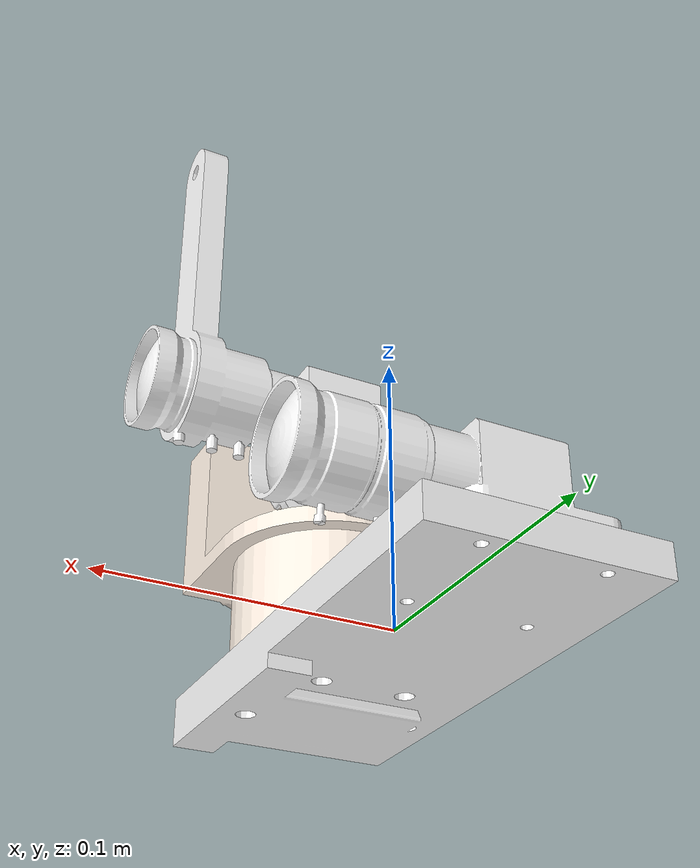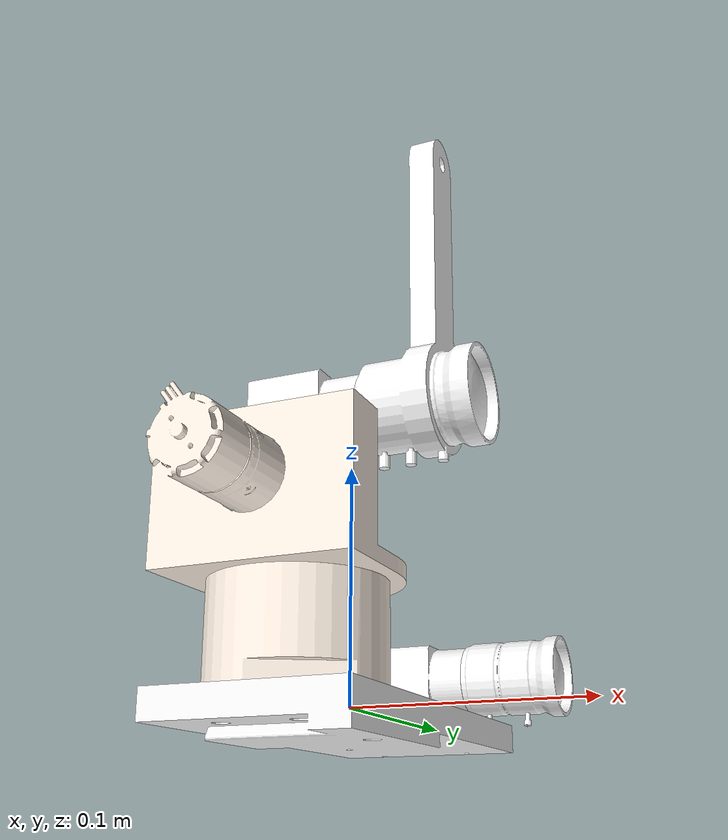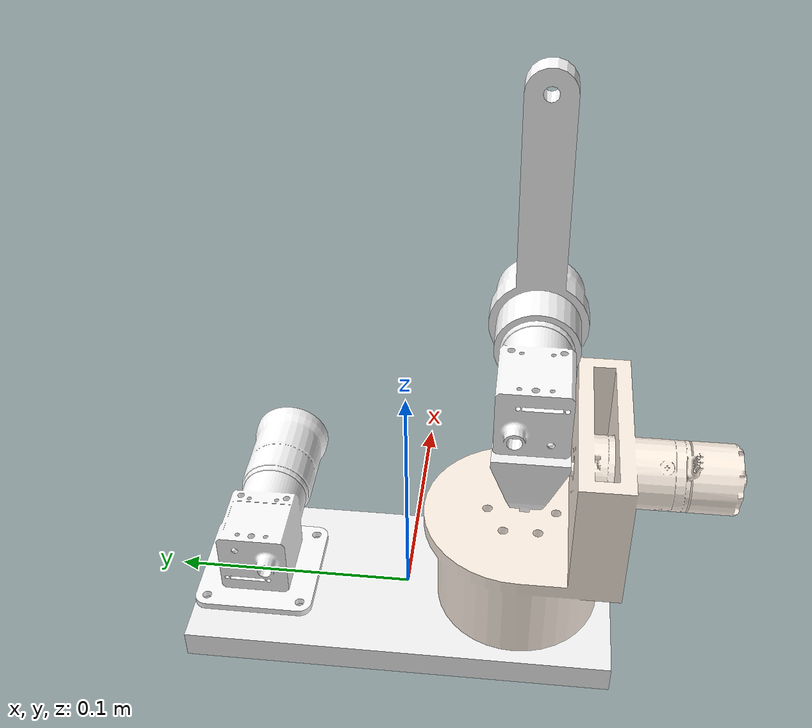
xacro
<?xml version="1.0"?>
<robot name="radar_gimbal" xmlns:xacro="http://www.ros.org/wiki/xacro">

  <!-- 相对 base_footprint 的装配平移。此前 z=3 会使 SDF 把底座+固定相机 lump 到 base_footprint 后质心约在 z≈3，选中时出现「细长盒子插到地下」的包围盒假象，并恶化数值问题。需要抬高整机请改 sim.launch.py 的 spawn -z。 -->
  <xacro:property name="base_footprint_xyz" value="0 0 0"/>
  <xacro:property name="base_footprint_rpy" value="0 0 0"/>

  <!-- 电机参数（按你提供的驱动实测页面）： -->
  <!-- CAN ID 0x01 = pitch（减速比 25，极对数 7） -->
  <!-- CAN ID 0x02 = 云台电机/roll（减速比 1，极对数 14） -->
  <!-- 控制阈值按实机当前配置：PMAX=pi, VMAX=30rad/s, TMAX=10Nm -->
  <xacro:property name="pitch_cmd_vmax_rad_s" value="30.0"/>
  <xacro:property name="pitch_cmd_tmax_nm" value="10.0"/>
  <xacro:property name="roll_cmd_vmax_rad_s" value="30.0"/>
  <xacro:property name="roll_cmd_tmax_nm" value="10.0"/>
  <!-- 粘滞系数按驱动读值回填 -->
  <xacro:property name="pitch_damping_measured" value="5.33834e-06"/>
  <xacro:property name="roll_damping_measured" value="0.00326047"/>

  <!-- 相机参数（按当前实物配置） -->
  <!-- 长焦：MV-CS016-10UC + 50mm F2.8（1/1.8" 靶面，水平尺寸约 7.2mm） -->
  <xacro:property name="tele_hfov_rad" value="${2.0 * atan(7.2 / (2.0 * 50.0))}"/>
  <!-- 短焦：MV-CS060-10UC-PRO + 5-12mm 变焦镜头，仿真默认用中段 8mm -->
  <xacro:property name="wide_hfov_rad" value="${2.0 * atan(7.2 / (2.0 * 8.0))}"/>

  <xacro:macro name="radar_solidworks_model">
    <link name="base_footprint">
      <inertial>
        <origin xyz="0 0 0" rpy="0 0 0"/>
        <mass value="1e-6"/>
        <inertia ixx="1e-9" ixy="0" ixz="0" iyy="1e-9" iyz="0" izz="1e-9"/>
      </inertial>
    </link>

    <joint name="base_footprint_joint" type="fixed">
      <origin xyz="${base_footprint_xyz}" rpy="${base_footprint_rpy}"/>
      <parent link="base_footprint"/>
      <child link="base_link"/>
    </joint>

    <link name="base_link">
      <inertial>
        <origin xyz="0.00106427671530626 -0.00322922392982693 -0.00671468562919772" rpy="0 0 0"/>
        <mass value="0.229931745877165"/>
        <inertia ixx="0.000590270936390006" ixy="1.07371769131118E-05" ixz="1.88719478321106E-06"
                 iyy="0.000126898863823102" iyz="-6.79511189117362E-06" izz="0.000709505066157741"/>
      </inertial>
      <visual>
        <origin xyz="0 0 0" rpy="0 0 0"/>
        <geometry>
          <mesh filename="package://radar_gimbal_gazebo/meshes/base_link.STL"/>
        </geometry>
        <material name="m_base">
          <color rgba="0.968627450980392 0.968627450980392 0.968627450980392 1"/>
        </material>
      </visual>
      <collision>
        <origin xyz="0 0 0" rpy="0 0 0"/>
        <geometry>
          <mesh filename="package://radar_gimbal_gazebo/meshes/base_link.STL"/>
        </geometry>
      </collision>
    </link>

    <link name="fix_camera_one_Link">
      <inertial>
        <origin xyz="-0.0292931154612421 -2.92415076856394E-05 -0.00534378407408276" rpy="0 0 0"/>
        <mass value="0.0432395885563312"/>
        <inertia ixx="6.84812974536652E-06" ixy="-2.42904999940939E-08" ixz="1.92184336275892E-08"
                 iyy="8.06433263966491E-06" iyz="1.10833354996719E-09" izz="1.1016716291214E-05"/>
      </inertial>
      <visual>
        <origin xyz="0 0 0" rpy="0 0 0"/>
        <geometry>
          <mesh filename="package://radar_gimbal_gazebo/meshes/fix_camera_one_Link.STL"/>
        </geometry>
        <material name="m_cam_housing">
          <color rgba="1 1 1 1"/>
        </material>
      </visual>
      <collision>
        <origin xyz="0 0 0" rpy="0 0 0"/>
        <geometry>
          <mesh filename="package://radar_gimbal_gazebo/meshes/fix_camera_one_Link.STL"/>
        </geometry>
      </collision>
    </link>

    <joint name="fix_camera_one" type="fixed">
      <origin xyz="0.030847222837753 0.0638829730233286 0.0175" rpy="0 0 0"/>
      <parent link="base_link"/>
      <child link="fix_camera_one_Link"/>
    </joint>

    <link name="camera_one_optical_Link">
      <inertial>
        <origin xyz="-4.92273352582437E-06 2.90905862816056E-05 0.0167250240812808" rpy="0 0 0"/>
        <mass value="0.0332391621102825"/>
        <inertia ixx="7.23769741063542E-06" ixy="3.06745951726435E-09" ixz="1.31194570343541E-10"
                 iyy="7.22008946786781E-06" iyz="-7.75285076070035E-10" izz="4.04870875276839E-06"/>
      </inertial>
      <visual>
        <origin xyz="0 0 0" rpy="0 0 0"/>
        <geometry>
          <mesh filename="package://radar_gimbal_gazebo/meshes/camera_one_optical_Link.STL"/>
        </geometry>
        <material name="m_optical_one">
          <color rgba="1 1 1 1"/>
        </material>
      </visual>
      <collision>
        <origin xyz="0 0 0" rpy="0 0 0"/>
        <geometry>
          <mesh filename="package://radar_gimbal_gazebo/meshes/camera_one_optical_Link.STL"/>
        </geometry>
      </collision>
    </link>

    <joint name="camera_one_optical" type="fixed">
      <origin xyz="0.0335268385635114 0 0" rpy="-1.5707963267949 0 1.5707963267949"/>
      <parent link="fix_camera_one_Link"/>
      <child link="camera_one_optical_Link"/>
    </joint>

    <link name="yaw_joint_Link">
      <inertial>
        <origin xyz="-0.000116508010712883 -0.00539983150200984 -0.0113972516576247" rpy="0 0 0"/>
        <mass value="0.683416690081258"/>
        <inertia ixx="0.000322059590126863" ixy="-1.77290607885917E-06" ixz="-1.18416365927975E-06"
                 iyy="0.000338934850311297" iyz="1.9429950603338E-05" izz="0.000442690001311827"/>
      </inertial>
      <visual>
        <origin xyz="0 0 0" rpy="0 0 0"/>
        <geometry>
          <mesh filename="package://radar_gimbal_gazebo/meshes/yaw_joint_Link.STL"/>
        </geometry>
        <material name="m_yaw">
          <color rgba="1 0.949019607843137 0.898039215686275 1"/>
        </material>
      </visual>
      <collision>
        <origin xyz="0 0 0" rpy="0 0 0"/>
        <geometry>
          <mesh filename="package://radar_gimbal_gazebo/meshes/yaw_joint_Link.STL"/>
        </geometry>
      </collision>
    </link>

    <joint name="yaw_joint" type="revolute">
      <origin xyz="0 -0.047117 0.0405" rpy="0 0 0"/>
      <parent link="base_link"/>
      <child link="yaw_joint_Link"/>
      <axis xyz="0 0 1"/>
      <!-- roll 轴（CAN ID 0x02）：按实测驱动控制阈值与粘滞系数 -->
      <limit lower="-3.14159" upper="3.14159" effort="${roll_cmd_tmax_nm}" velocity="${roll_cmd_vmax_rad_s}"/>
      <dynamics damping="${roll_damping_measured}" friction="0.02"/>
    </joint>

    <link name="pich_joint_Link">
      <inertial>
        <origin xyz="0.000138467596281736 0.00144707841660707 0.00776665263018918" rpy="0 0 0"/>
        <mass value="0.0121756572772907"/>
        <inertia ixx="1.50898942787321E-06" ixy="-9.08706173162835E-10" ixz="-5.55374973288002E-09"
                 iyy="3.11525960305741E-06" iyz="3.88141718579356E-08" izz="2.57913481745752E-06"/>
      </inertial>
      <visual>
        <origin xyz="0 0 0" rpy="0 0 0"/>
        <geometry>
          <mesh filename="package://radar_gimbal_gazebo/meshes/pich_joint_Link.STL"/>
        </geometry>
        <material name="m_pitch">
          <color rgba="0.968627450980392 0.968627450980392 0.968627450980392 1"/>
        </material>
      </visual>
      <collision>
        <origin xyz="0 0 0" rpy="0 0 0"/>
        <geometry>
          <mesh filename="package://radar_gimbal_gazebo/meshes/pich_joint_Link.STL"/>
        </geometry>
      </collision>
    </link>

    <joint name="pitch_joint" type="revolute">
      <origin xyz="0 -0.003 0.031" rpy="0 0 0"/>
      <parent link="yaw_joint_Link"/>
      <child link="pich_joint_Link"/>
      <axis xyz="0 -1 0"/>
      <!-- pitch 轴（CAN ID 0x01）：按实测驱动控制阈值与粘滞系数 -->
      <limit lower="-1.2" upper="1.2" effort="${pitch_cmd_tmax_nm}" velocity="${pitch_cmd_vmax_rad_s}"/>
      <dynamics damping="${pitch_damping_measured}" friction="0.02"/>
    </joint>

    <link name="movable_camera_tow_Link">
      <inertial>
        <origin xyz="-0.0284189606680574 4.39067606750332E-05 -5.40306986665517E-07" rpy="0 0 0"/>
        <mass value="0.0287971770555077"/>
        <inertia ixx="3.91534975477771E-06" ixy="2.42904999940923E-08" ixz="-1.92184336275884E-08"
                 iyy="5.14110941396445E-06" iyz="1.10833354996656E-09" izz="5.18237669217594E-06"/>
      </inertial>
      <visual>
        <origin xyz="0 0 0" rpy="0 0 0"/>
        <geometry>
          <mesh filename="package://radar_gimbal_gazebo/meshes/movable_camera_tow_Link.STL"/>
        </geometry>
        <material name="m_cam_tow">
          <color rgba="1 1 1 1"/>
        </material>
      </visual>
      <collision>
        <origin xyz="0 0 0" rpy="0 0 0"/>
        <geometry>
          <mesh filename="package://radar_gimbal_gazebo/meshes/movable_camera_tow_Link.STL"/>
        </geometry>
      </collision>
    </link>

    <joint name="movable_camera_tow" type="fixed">
      <origin xyz="0.03085 0.001 0.0323" rpy="0 0 0"/>
      <parent link="pich_joint_Link"/>
      <child link="movable_camera_tow_Link"/>
    </joint>

    <link name="camera_tow_optical_Link">
      <inertial>
        <origin xyz="0.000202809333383402 -0.016436035218942 0.0145886833049471" rpy="0 0 0"/>
        <mass value="0.0672005971243301"/>
        <inertia ixx="4.10510128858893E-05" ixy="3.4727960827953E-07" ixz="1.08829131787497E-10"
                 iyy="1.28432056341037E-05" iyz="-1.3644917937298E-08" izz="3.78896902119391E-05"/>
      </inertial>
      <visual>
        <origin xyz="0 0 0" rpy="0 0 0"/>
        <geometry>
          <mesh filename="package://radar_gimbal_gazebo/meshes/camera_tow_optical_Link.STL"/>
        </geometry>
        <material name="m_optical_tow">
          <color rgba="1 1 1 1"/>
        </material>
      </visual>
      <collision>
        <origin xyz="0 0 0" rpy="0 0 0"/>
        <geometry>
          <mesh filename="package://radar_gimbal_gazebo/meshes/camera_tow_optical_Link.STL"/>
        </geometry>
      </collision>
    </link>

    <joint name="camera_tow_optical" type="fixed">
      <origin xyz="0.0354242123304058 0 0" rpy="-1.5707963267949 0 1.5707963267949"/>
      <parent link="movable_camera_tow_Link"/>
      <child link="camera_tow_optical_Link"/>
    </joint>
  </xacro:macro>

  <xacro:radar_solidworks_model/>

  <!-- 底座固定：URDF→SDF 会把 base_footprint_joint 与底座上固定相机链 lump 成单一 link「base_footprint」，gazebo 标签须写在此 link 上。
       gz sdf 会把 kinematic/gravity 写入 SDF；仅靠 static 在部分管线中不会落到 link 上，易出现整机缓慢自转。 -->
  <gazebo reference="base_footprint">
    <kinematic>true</kinematic>
    <gravity>false</gravity>
  </gazebo>

  <!-- 可动云台链关闭重力：pitch 轴在 effort 模式下受恒重力矩，易单侧吸到限位；
       本仿真无 IMU/前馈，仅用 PID 时关闭重力是最稳的云台调试方式。 -->
  <gazebo reference="yaw_joint_Link">
    <gravity>false</gravity>
  </gazebo>
  <gazebo reference="pich_joint_Link">
    <gravity>false</gravity>
  </gazebo>
  <gazebo reference="movable_camera_tow_Link">
    <gravity>false</gravity>
  </gazebo>

  <gazebo reference="camera_tow_optical_Link">
    <gravity>false</gravity>
    <material>Gazebo/Orange</material>
    <sensor type="camera" name="gimbal_camera_sensor">
      <always_on>true</always_on>
      <update_rate>30.0</update_rate>
      <camera>
        <!-- Gazebo +X 视线对齐 ROS +Z（pitch +90°）；像平面再逆时针 90°（roll +90°）。若变成顺时针转 90°，把 roll 改为 -π/2。 -->
        <pose>0 0 0 1.5707963267948966 1.5707963267948966 0</pose>
        <!-- 长焦相机：MV-CS016-10UC + 50mm -->
        <horizontal_fov>${tele_hfov_rad}</horizontal_fov>
        <image>
          <width>640</width>
          <height>480</height>
          <format>R8G8B8</format>
        </image>
        <clip>
          <!-- 镜头最近对焦距离 0.25m -->
          <near>0.25</near>
          <far>1000.0</far>
        </clip>
      </camera>
      <plugin name="gimbal_camera_controller" filename="libgazebo_ros_camera.so">
        <ros>
          <namespace>/</namespace>
        </ros>
        <camera_name>gimbal_camera</camera_name>
        <image_topic_name>image_raw</image_topic_name>
        <camera_info_topic_name>camera_info</camera_info_topic_name>
        <frame_name>camera_tow_optical_Link</frame_name>
      </plugin>
    </sensor>
  </gazebo>

  <gazebo reference="camera_one_optical_Link">
    <material>Gazebo/Black</material>
    <sensor type="camera" name="fixed_camera_sensor">
      <always_on>true</always_on>
      <update_rate>30.0</update_rate>
      <camera>
        <!-- 同云台相机：pitch +90° + roll +90°（像平面逆时针 90°）。 -->
        <pose>0 0 0 1.5707963267948966 1.5707963267948966 0</pose>
        <!-- 短焦相机：MV-CS060-10UC-PRO + 5-12mm，默认 8mm -->
        <horizontal_fov>${wide_hfov_rad}</horizontal_fov>
        <image>
          <width>1440</width>
          <height>1080</height>
          <format>R8G8B8</format>
        </image>
        <clip>
          <near>0.05</near>
          <far>1000.0</far>
        </clip>
      </camera>
      <plugin name="fixed_camera_controller" filename="libgazebo_ros_camera.so">
        <ros>
          <namespace>/</namespace>
        </ros>
        <camera_name>fixed_camera</camera_name>
        <image_topic_name>image_raw</image_topic_name>
        <camera_info_topic_name>camera_info</camera_info_topic_name>
        <frame_name>camera_one_optical_Link</frame_name>
      </plugin>
    </sensor>
  </gazebo>

  <!-- 说明：
       - position：Gazebo 每步 SetPosition，几乎不引入力学耦合，适合验证 yaw/pitch 方向与 TF 是否正确。
       - position_pid：用 PID 输出力矩(SetForce)，更“真实”，但需要系统性调参，否则会出现耦合、饱和与振荡。 -->
  <ros2_control name="GazeboSystem" type="system">
    <hardware>
      <plugin>gazebo_ros2_control/GazeboSystem</plugin>
    </hardware>
    <joint name="yaw_joint">
      <command_interface name="position"/>
      <state_interface name="position"/>
      <state_interface name="velocity"/>
    </joint>
    <joint name="pitch_joint">
      <command_interface name="position"/>
      <state_interface name="position"/>
      <state_interface name="velocity"/>
    </joint>
  </ros2_control>

  <gazebo>
    <plugin name="gazebo_ros2_control" filename="libgazebo_ros2_control.so">
      <parameters>$(find radar_gimbal_gazebo)/config/ros2_controllers.yaml</parameters>
    </plugin>
  </gazebo>

</robot>
